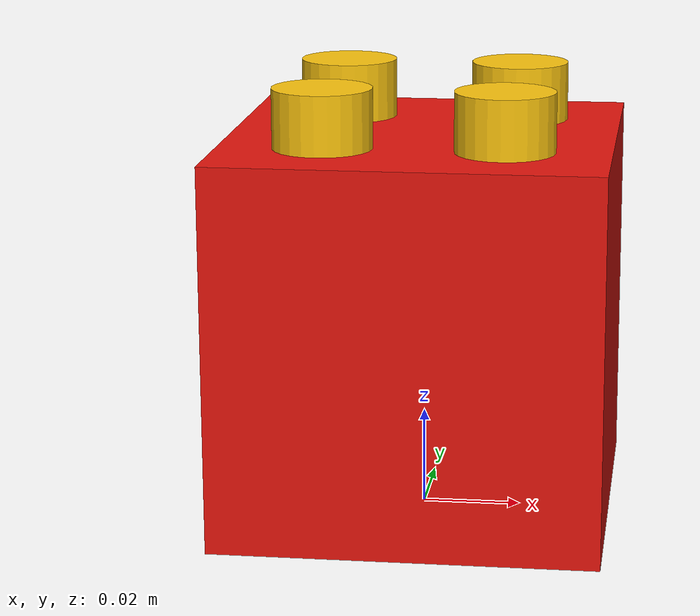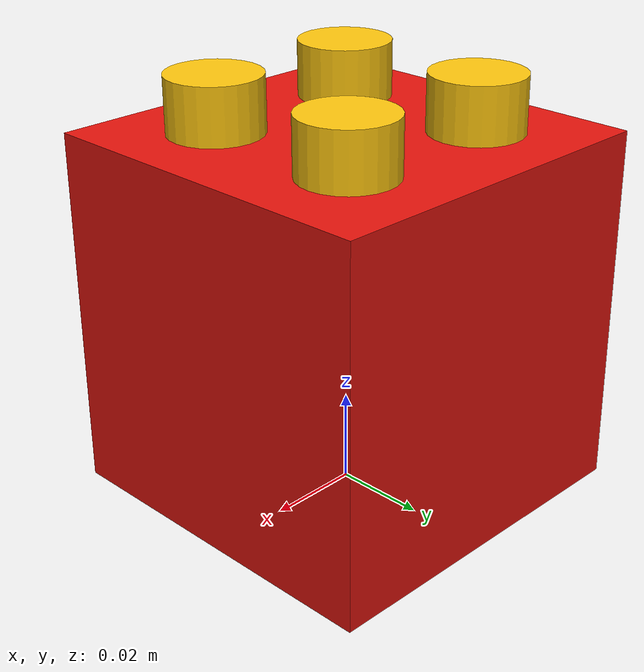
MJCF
<mujoco model="custom_toy_block">
  <asset>
    <material name="toy_block_red" rgba="0.9 0.08 0.05 1"/>
    <material name="toy_block_yellow" rgba="1.0 0.78 0.05 1"/>
  </asset>
  <worldbody>
    <body>
      <body name="object">
      <geom name="block_col" type="box" size="0.040 0.040 0.040" pos="0 0 0.040" rgba="0 0 0 0" density="250" group="0" contype="1" conaffinity="1"/>
      <geom name="block_vis" type="box" size="0.039 0.039 0.039" pos="0 0 0.040" material="toy_block_red" group="1" contype="0" conaffinity="0"/>
      <geom name="stud_1" type="cylinder" size="0.010 0.006" pos="-0.018 -0.018 0.085" material="toy_block_yellow" group="1" contype="0" conaffinity="0"/>
      <geom name="stud_2" type="cylinder" size="0.010 0.006" pos="0.018 -0.018 0.085" material="toy_block_yellow" group="1" contype="0" conaffinity="0"/>
      <geom name="stud_3" type="cylinder" size="0.010 0.006" pos="-0.018 0.018 0.085" material="toy_block_yellow" group="1" contype="0" conaffinity="0"/>
      <geom name="stud_4" type="cylinder" size="0.010 0.006" pos="0.018 0.018 0.085" material="toy_block_yellow" group="1" contype="0" conaffinity="0"/>
      <geom name="reg_bbox" type="box" size="0.060 0.060 0.046" pos="0 0 0.046" rgba="0 0 0 0" group="3" contype="0" conaffinity="0"/>
      </body>
      <site name="bottom_site" pos="0 0 0" size="0.005" rgba="0 0 0 0"/>
      <site name="top_site" pos="0 0 0.092" size="0.005" rgba="0 0 0 0"/>
      <site name="horizontal_radius_site" pos="0.060 0 0.046" size="0.005" rgba="0 0 0 0"/>
    </body>
  </worldbody>
</mujoco>
